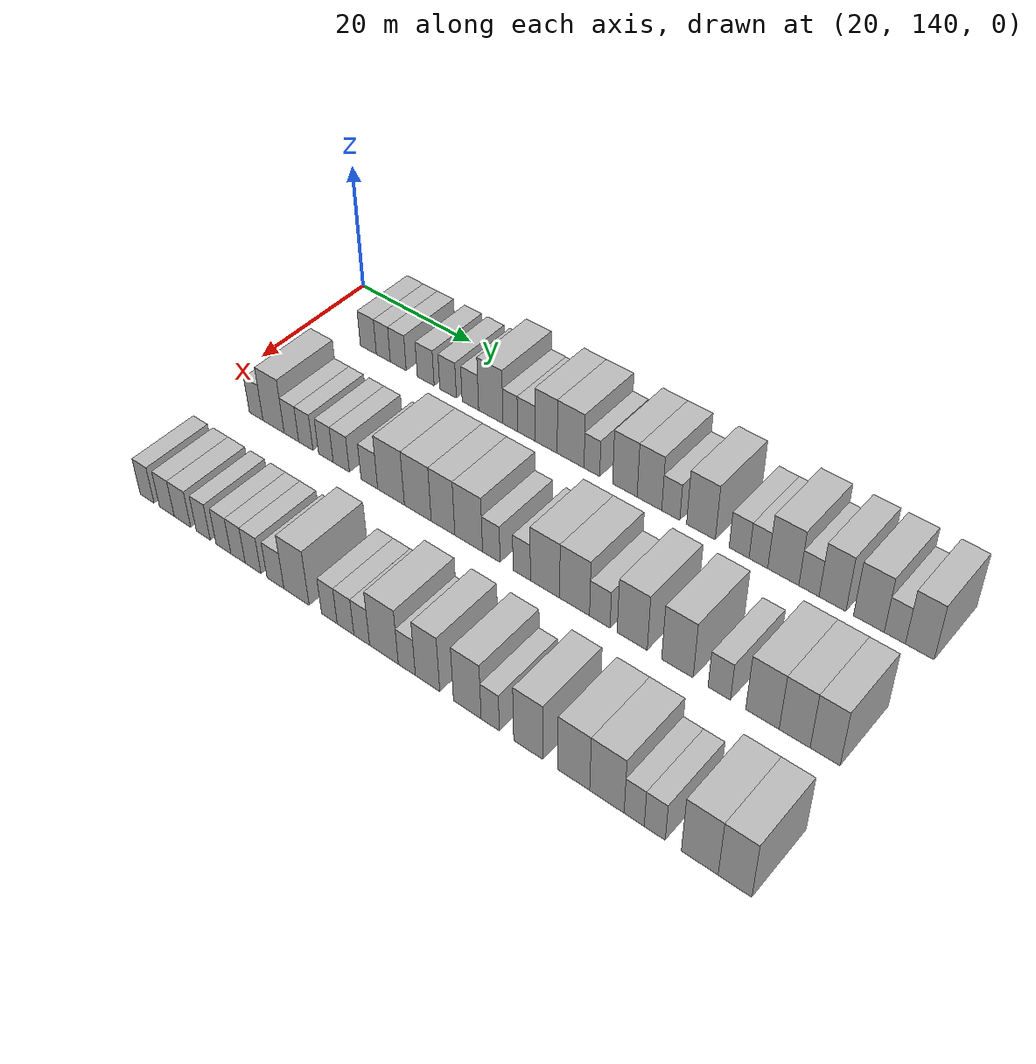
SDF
<sdf version="1.6">
 <world name="default">
  <model name="building_88">
   <static>1</static>
   <pose>25.0000 150.2598 0 0.000000 0.000000 0.000000</pose>
   <link name="link">
    <pose>0 0 3.00 0 0 0</pose>
    <collision name="collision"><geometry><box><size>10.0000 2.9567 6.0000</size></box></geometry></collision>
    <visual name="visual">
     <cast_shadows>0</cast_shadows>
     <geometry><box><size>10.0000 2.9567 6.0000</size></box></geometry>
     <material>
      <script>
       <uri>model://HANNAS_wall/materials/scripts</uri>
       <uri>model://HANNAS_wall/materials/textures</uri>
       <name>vrc/HANNAS_wall</name>
      </script>
     </material>
    </visual>
   </link>
  </model>
  <model name="building_89">
   <static>1</static>
   <pose>25.0000 153.0227 0 0.000000 0.000000 0.000000</pose>
   <link name="link">
    <pose>0 0 3.00 0 0 0</pose>
    <collision name="collision"><geometry><box><size>10.0000 2.5691 6.0000</size></box></geometry></collision>
    <visual name="visual">
     <cast_shadows>0</cast_shadows>
     <geometry><box><size>10.0000 2.5691 6.0000</size></box></geometry>
     <material>
      <script>
       <uri>model://HANNAS_wall/materials/scripts</uri>
       <uri>model://HANNAS_wall/materials/textures</uri>
       <name>vrc/HANNAS_wall</name>
      </script>
     </material>
    </visual>
   </link>
  </model>
  <model name="building_90">
   <static>1</static>
   <pose>25.0000 155.7502 0 0.000000 0.000000 0.000000</pose>
   <link name="link">
    <pose>0 0 3.00 0 0 0</pose>
    <collision name="collision"><geometry><box><size>10.0000 2.8860 6.0000</size></box></geometry></collision>
    <visual name="visual">
     <cast_shadows>0</cast_shadows>
     <geometry><box><size>10.0000 2.8860 6.0000</size></box></geometry>
     <material>
      <script>
       <uri>model://HANNAS_wall/materials/scripts</uri>
       <uri>model://HANNAS_wall/materials/textures</uri>
       <name>vrc/HANNAS_wall</name>
      </script>
     </material>
    </visual>
   </link>
  </model>
  <model name="building_91">
   <static>1</static>
   <pose>25.0000 160.6923 0 0.000000 0.000000 0.000000</pose>
   <link name="link">
    <pose>0 0 3.00 0 0 0</pose>
    <collision name="collision"><geometry><box><size>10.0000 2.9981 6.0000</size></box></geometry></collision>
    <visual name="visual">
     <cast_shadows>0</cast_shadows>
     <geometry><box><size>10.0000 2.9981 6.0000</size></box></geometry>
     <material>
      <script>
       <uri>model://HANNAS_wall/materials/scripts</uri>
       <uri>model://HANNAS_wall/materials/textures</uri>
       <name>vrc/HANNAS_wall</name>
      </script>
     </material>
    </visual>
   </link>
  </model>
  <model name="building_92">
   <static>1</static>
   <pose>25.0000 164.6418 0 0.000000 0.000000 0.000000</pose>
   <link name="link">
    <pose>0 0 3.00 0 0 0</pose>
    <collision name="collision"><geometry><box><size>10.0000 2.9009 6.0000</size></box></geometry></collision>
    <visual name="visual">
     <cast_shadows>0</cast_shadows>
     <geometry><box><size>10.0000 2.9009 6.0000</size></box></geometry>
     <material>
      <script>
       <uri>model://HANNAS_wall/materials/scripts</uri>
       <uri>model://HANNAS_wall/materials/textures</uri>
       <name>vrc/HANNAS_wall</name>
      </script>
     </material>
    </visual>
   </link>
  </model>
  <model name="building_93">
   <static>1</static>
   <pose>25.0000 168.5170 0 0.000000 0.000000 0.000000</pose>
   <link name="link">
    <pose>0 0 3.00 0 0 0</pose>
    <collision name="collision"><geometry><box><size>10.0000 2.8494 6.0000</size></box></geometry></collision>
    <visual name="visual">
     <cast_shadows>0</cast_shadows>
     <geometry><box><size>10.0000 2.8494 6.0000</size></box></geometry>
     <material>
      <script>
       <uri>model://HANNAS_wall/materials/scripts</uri>
       <uri>model://HANNAS_wall/materials/textures</uri>
       <name>vrc/HANNAS_wall</name>
      </script>
     </material>
    </visual>
   </link>
  </model>
  <model name="building_94">
   <static>1</static>
   <pose>25.0000 172.0092 0 0.000000 0.000000 0.000000</pose>
   <link name="link">
    <pose>0 0 4.50 0 0 0</pose>
    <collision name="collision"><geometry><box><size>10.0000 4.1350 9.0000</size></box></geometry></collision>
    <visual name="visual">
     <cast_shadows>0</cast_shadows>
     <geometry><box><size>10.0000 4.1350 9.0000</size></box></geometry>
     <material>
      <script>
       <uri>model://HANNAS_wall/materials/scripts</uri>
       <uri>model://HANNAS_wall/materials/textures</uri>
       <name>vrc/HANNAS_wall</name>
      </script>
     </material>
    </visual>
   </link>
  </model>
  <model name="building_95">
   <static>1</static>
   <pose>25.0000 175.2927 0 0.000000 0.000000 0.000000</pose>
   <link name="link">
    <pose>0 0 3.00 0 0 0</pose>
    <collision name="collision"><geometry><box><size>10.0000 2.4320 6.0000</size></box></geometry></collision>
    <visual name="visual">
     <cast_shadows>0</cast_shadows>
     <geometry><box><size>10.0000 2.4320 6.0000</size></box></geometry>
     <material>
      <script>
       <uri>model://HANNAS_wall/materials/scripts</uri>
       <uri>model://HANNAS_wall/materials/textures</uri>
       <name>vrc/HANNAS_wall</name>
      </script>
     </material>
    </visual>
   </link>
  </model>
  <model name="building_96">
   <static>1</static>
   <pose>25.0000 177.9557 0 0.000000 0.000000 0.000000</pose>
   <link name="link">
    <pose>0 0 3.00 0 0 0</pose>
    <collision name="collision"><geometry><box><size>10.0000 2.8940 6.0000</size></box></geometry></collision>
    <visual name="visual">
     <cast_shadows>0</cast_shadows>
     <geometry><box><size>10.0000 2.8940 6.0000</size></box></geometry>
     <material>
      <script>
       <uri>model://HANNAS_wall/materials/scripts</uri>
       <uri>model://HANNAS_wall/materials/textures</uri>
       <name>vrc/HANNAS_wall</name>
      </script>
     </material>
    </visual>
   </link>
  </model>
  <model name="building_97">
   <static>1</static>
   <pose>25.0000 181.2057 0 0.000000 0.000000 0.000000</pose>
   <link name="link">
    <pose>0 0 4.50 0 0 0</pose>
    <collision name="collision"><geometry><box><size>10.0000 3.6061 9.0000</size></box></geometry></collision>
    <visual name="visual">
     <cast_shadows>0</cast_shadows>
     <geometry><box><size>10.0000 3.6061 9.0000</size></box></geometry>
     <material>
      <script>
       <uri>model://HANNAS_wall/materials/scripts</uri>
       <uri>model://HANNAS_wall/materials/textures</uri>
       <name>vrc/HANNAS_wall</name>
      </script>
     </material>
    </visual>
   </link>
  </model>
  <model name="building_98">
   <static>1</static>
   <pose>25.0000 185.1647 0 0.000000 0.000000 0.000000</pose>
   <link name="link">
    <pose>0 0 4.50 0 0 0</pose>
    <collision name="collision"><geometry><box><size>10.0000 4.3118 9.0000</size></box></geometry></collision>
    <visual name="visual">
     <cast_shadows>0</cast_shadows>
     <geometry><box><size>10.0000 4.3118 9.0000</size></box></geometry>
     <material>
      <script>
       <uri>model://HANNAS_wall/materials/scripts</uri>
       <uri>model://HANNAS_wall/materials/textures</uri>
       <name>vrc/HANNAS_wall</name>
      </script>
     </material>
    </visual>
   </link>
  </model>
  <model name="building_99">
   <static>1</static>
   <pose>25.0000 188.5577 0 0.000000 0.000000 0.000000</pose>
   <link name="link">
    <pose>0 0 3.00 0 0 0</pose>
    <collision name="collision"><geometry><box><size>10.0000 2.4742 6.0000</size></box></geometry></collision>
    <visual name="visual">
     <cast_shadows>0</cast_shadows>
     <geometry><box><size>10.0000 2.4742 6.0000</size></box></geometry>
     <material>
      <script>
       <uri>model://HANNAS_wall/materials/scripts</uri>
       <uri>model://HANNAS_wall/materials/textures</uri>
       <name>vrc/HANNAS_wall</name>
      </script>
     </material>
    </visual>
   </link>
  </model>
  <model name="building_100">
   <static>1</static>
   <pose>25.0000 193.6884 0 0.000000 0.000000 0.000000</pose>
   <link name="link">
    <pose>0 0 4.50 0 0 0</pose>
    <collision name="collision"><geometry><box><size>10.0000 3.7870 9.0000</size></box></geometry></collision>
    <visual name="visual">
     <cast_shadows>0</cast_shadows>
     <geometry><box><size>10.0000 3.7870 9.0000</size></box></geometry>
     <material>
      <script>
       <uri>model://HANNAS_wall/materials/scripts</uri>
       <uri>model://HANNAS_wall/materials/textures</uri>
       <name>vrc/HANNAS_wall</name>
      </script>
     </material>
    </visual>
   </link>
  </model>
  <model name="building_101">
   <static>1</static>
   <pose>25.0000 197.4540 0 0.000000 0.000000 0.000000</pose>
   <link name="link">
    <pose>0 0 4.50 0 0 0</pose>
    <collision name="collision"><geometry><box><size>10.0000 3.7443 9.0000</size></box></geometry></collision>
    <visual name="visual">
     <cast_shadows>0</cast_shadows>
     <geometry><box><size>10.0000 3.7443 9.0000</size></box></geometry>
     <material>
      <script>
       <uri>model://HANNAS_wall/materials/scripts</uri>
       <uri>model://HANNAS_wall/materials/textures</uri>
       <name>vrc/HANNAS_wall</name>
      </script>
     </material>
    </visual>
   </link>
  </model>
  <model name="building_102">
   <static>1</static>
   <pose>25.0000 200.6809 0 0.000000 0.000000 0.000000</pose>
   <link name="link">
    <pose>0 0 3.00 0 0 0</pose>
    <collision name="collision"><geometry><box><size>10.0000 2.7096 6.0000</size></box></geometry></collision>
    <visual name="visual">
     <cast_shadows>0</cast_shadows>
     <geometry><box><size>10.0000 2.7096 6.0000</size></box></geometry>
     <material>
      <script>
       <uri>model://HANNAS_wall/materials/scripts</uri>
       <uri>model://HANNAS_wall/materials/textures</uri>
       <name>vrc/HANNAS_wall</name>
      </script>
     </material>
    </visual>
   </link>
  </model>
  <model name="building_103">
   <static>1</static>
   <pose>25.0000 205.1415 0 0.000000 0.000000 0.000000</pose>
   <link name="link">
    <pose>0 0 4.50 0 0 0</pose>
    <collision name="collision"><geometry><box><size>10.0000 4.2116 9.0000</size></box></geometry></collision>
    <visual name="visual">
     <cast_shadows>0</cast_shadows>
     <geometry><box><size>10.0000 4.2116 9.0000</size></box></geometry>
     <material>
      <script>
       <uri>model://HANNAS_wall/materials/scripts</uri>
       <uri>model://HANNAS_wall/materials/textures</uri>
       <name>vrc/HANNAS_wall</name>
      </script>
     </material>
    </visual>
   </link>
  </model>
  <model name="building_104">
   <static>1</static>
   <pose>25.0000 210.6692 0 0.000000 0.000000 0.000000</pose>
   <link name="link">
    <pose>0 0 3.00 0 0 0</pose>
    <collision name="collision"><geometry><box><size>10.0000 2.8437 6.0000</size></box></geometry></collision>
    <visual name="visual">
     <cast_shadows>0</cast_shadows>
     <geometry><box><size>10.0000 2.8437 6.0000</size></box></geometry>
     <material>
      <script>
       <uri>model://HANNAS_wall/materials/scripts</uri>
       <uri>model://HANNAS_wall/materials/textures</uri>
       <name>vrc/HANNAS_wall</name>
      </script>
     </material>
    </visual>
   </link>
  </model>
  <model name="building_105">
   <static>1</static>
   <pose>25.0000 213.4097 0 0.000000 0.000000 0.000000</pose>
   <link name="link">
    <pose>0 0 3.00 0 0 0</pose>
    <collision name="collision"><geometry><box><size>10.0000 2.6374 6.0000</size></box></geometry></collision>
    <visual name="visual">
     <cast_shadows>0</cast_shadows>
     <geometry><box><size>10.0000 2.6374 6.0000</size></box></geometry>
     <material>
      <script>
       <uri>model://HANNAS_wall/materials/scripts</uri>
       <uri>model://HANNAS_wall/materials/textures</uri>
       <name>vrc/HANNAS_wall</name>
      </script>
     </material>
    </visual>
   </link>
  </model>
  <model name="building_106">
   <static>1</static>
   <pose>25.0000 216.8878 0 0.000000 0.000000 0.000000</pose>
   <link name="link">
    <pose>0 0 4.50 0 0 0</pose>
    <collision name="collision"><geometry><box><size>10.0000 4.3187 9.0000</size></box></geometry></collision>
    <visual name="visual">
     <cast_shadows>0</cast_shadows>
     <geometry><box><size>10.0000 4.3187 9.0000</size></box></geometry>
     <material>
      <script>
       <uri>model://HANNAS_wall/materials/scripts</uri>
       <uri>model://HANNAS_wall/materials/textures</uri>
       <name>vrc/HANNAS_wall</name>
      </script>
     </material>
    </visual>
   </link>
  </model>
  <model name="building_107">
   <static>1</static>
   <pose>25.0000 220.4277 0 0.000000 0.000000 0.000000</pose>
   <link name="link">
    <pose>0 0 3.00 0 0 0</pose>
    <collision name="collision"><geometry><box><size>10.0000 2.7611 6.0000</size></box></geometry></collision>
    <visual name="visual">
     <cast_shadows>0</cast_shadows>
     <geometry><box><size>10.0000 2.7611 6.0000</size></box></geometry>
     <material>
      <script>
       <uri>model://HANNAS_wall/materials/scripts</uri>
       <uri>model://HANNAS_wall/materials/textures</uri>
       <name>vrc/HANNAS_wall</name>
      </script>
     </material>
    </visual>
   </link>
  </model>
  <model name="building_108">
   <static>1</static>
   <pose>25.0000 223.6137 0 0.000000 0.000000 0.000000</pose>
   <link name="link">
    <pose>0 0 4.50 0 0 0</pose>
    <collision name="collision"><geometry><box><size>10.0000 3.6108 9.0000</size></box></geometry></collision>
    <visual name="visual">
     <cast_shadows>0</cast_shadows>
     <geometry><box><size>10.0000 3.6108 9.0000</size></box></geometry>
     <material>
      <script>
       <uri>model://HANNAS_wall/materials/scripts</uri>
       <uri>model://HANNAS_wall/materials/textures</uri>
       <name>vrc/HANNAS_wall</name>
      </script>
     </material>
    </visual>
   </link>
  </model>
  <model name="building_109">
   <static>1</static>
   <pose>25.0000 228.4411 0 0.000000 0.000000 0.000000</pose>
   <link name="link">
    <pose>0 0 4.50 0 0 0</pose>
    <collision name="collision"><geometry><box><size>10.0000 4.0441 9.0000</size></box></geometry></collision>
    <visual name="visual">
     <cast_shadows>0</cast_shadows>
     <geometry><box><size>10.0000 4.0441 9.0000</size></box></geometry>
     <material>
      <script>
       <uri>model://HANNAS_wall/materials/scripts</uri>
       <uri>model://HANNAS_wall/materials/textures</uri>
       <name>vrc/HANNAS_wall</name>
      </script>
     </material>
    </visual>
   </link>
  </model>
  <model name="building_110">
   <static>1</static>
   <pose>25.0000 231.8289 0 0.000000 0.000000 0.000000</pose>
   <link name="link">
    <pose>0 0 3.00 0 0 0</pose>
    <collision name="collision"><geometry><box><size>10.0000 2.7315 6.0000</size></box></geometry></collision>
    <visual name="visual">
     <cast_shadows>0</cast_shadows>
     <geometry><box><size>10.0000 2.7315 6.0000</size></box></geometry>
     <material>
      <script>
       <uri>model://HANNAS_wall/materials/scripts</uri>
       <uri>model://HANNAS_wall/materials/textures</uri>
       <name>vrc/HANNAS_wall</name>
      </script>
     </material>
    </visual>
   </link>
  </model>
  <model name="building_111">
   <static>1</static>
   <pose>25.0000 235.0298 0 0.000000 0.000000 0.000000</pose>
   <link name="link">
    <pose>0 0 4.50 0 0 0</pose>
    <collision name="collision"><geometry><box><size>10.0000 3.6703 9.0000</size></box></geometry></collision>
    <visual name="visual">
     <cast_shadows>0</cast_shadows>
     <geometry><box><size>10.0000 3.6703 9.0000</size></box></geometry>
     <material>
      <script>
       <uri>model://HANNAS_wall/materials/scripts</uri>
       <uri>model://HANNAS_wall/materials/textures</uri>
       <name>vrc/HANNAS_wall</name>
      </script>
     </material>
    </visual>
   </link>
  </model>
  <model name="building_214">
   <static>1</static>
   <pose>44.0000 148.1251 0 0.000000 0.000000 0.000000</pose>
   <link name="link">
    <pose>0 0 3.00 0 0 0</pose>
    <collision name="collision"><geometry><box><size>10.0000 2.5204 6.0000</size></box></geometry></collision>
    <visual name="visual">
     <cast_shadows>0</cast_shadows>
     <geometry><box><size>10.0000 2.5204 6.0000</size></box></geometry>
     <material>
      <script>
       <uri>model://HANNAS_wall/materials/scripts</uri>
       <uri>model://HANNAS_wall/materials/textures</uri>
       <name>vrc/HANNAS_wall</name>
      </script>
     </material>
    </visual>
   </link>
  </model>
  <model name="building_215">
   <static>1</static>
   <pose>44.0000 151.3340 0 0.000000 0.000000 0.000000</pose>
   <link name="link">
    <pose>0 0 4.50 0 0 0</pose>
    <collision name="collision"><geometry><box><size>10.0000 3.8974 9.0000</size></box></geometry></collision>
    <visual name="visual">
     <cast_shadows>0</cast_shadows>
     <geometry><box><size>10.0000 3.8974 9.0000</size></box></geometry>
     <material>
      <script>
       <uri>model://HANNAS_wall/materials/scripts</uri>
       <uri>model://HANNAS_wall/materials/textures</uri>
       <name>vrc/HANNAS_wall</name>
      </script>
     </material>
    </visual>
   </link>
  </model>
  <model name="building_216">
   <static>1</static>
   <pose>44.0000 154.5901 0 0.000000 0.000000 0.000000</pose>
   <link name="link">
    <pose>0 0 3.00 0 0 0</pose>
    <collision name="collision"><geometry><box><size>10.0000 2.6148 6.0000</size></box></geometry></collision>
    <visual name="visual">
     <cast_shadows>0</cast_shadows>
     <geometry><box><size>10.0000 2.6148 6.0000</size></box></geometry>
     <material>
      <script>
       <uri>model://HANNAS_wall/materials/scripts</uri>
       <uri>model://HANNAS_wall/materials/textures</uri>
       <name>vrc/HANNAS_wall</name>
      </script>
     </material>
    </visual>
   </link>
  </model>
  <model name="building_217">
   <static>1</static>
   <pose>44.0000 157.1771 0 0.000000 0.000000 0.000000</pose>
   <link name="link">
    <pose>0 0 3.00 0 0 0</pose>
    <collision name="collision"><geometry><box><size>10.0000 2.5592 6.0000</size></box></geometry></collision>
    <visual name="visual">
     <cast_shadows>0</cast_shadows>
     <geometry><box><size>10.0000 2.5592 6.0000</size></box></geometry>
     <material>
      <script>
       <uri>model://HANNAS_wall/materials/scripts</uri>
       <uri>model://HANNAS_wall/materials/textures</uri>
       <name>vrc/HANNAS_wall</name>
      </script>
     </material>
    </visual>
   </link>
  </model>
  <model name="building_218">
   <static>1</static>
   <pose>44.0000 160.7422 0 0.000000 0.000000 0.000000</pose>
   <link name="link">
    <pose>0 0 3.00 0 0 0</pose>
    <collision name="collision"><geometry><box><size>10.0000 2.5712 6.0000</size></box></geometry></collision>
    <visual name="visual">
     <cast_shadows>0</cast_shadows>
     <geometry><box><size>10.0000 2.5712 6.0000</size></box></geometry>
     <material>
      <script>
       <uri>model://HANNAS_wall/materials/scripts</uri>
       <uri>model://HANNAS_wall/materials/textures</uri>
       <name>vrc/HANNAS_wall</name>
      </script>
     </material>
    </visual>
   </link>
  </model>
  <model name="building_219">
   <static>1</static>
   <pose>44.0000 163.4364 0 0.000000 0.000000 0.000000</pose>
   <link name="link">
    <pose>0 0 3.00 0 0 0</pose>
    <collision name="collision"><geometry><box><size>10.0000 2.8171 6.0000</size></box></geometry></collision>
    <visual name="visual">
     <cast_shadows>0</cast_shadows>
     <geometry><box><size>10.0000 2.8171 6.0000</size></box></geometry>
     <material>
      <script>
       <uri>model://HANNAS_wall/materials/scripts</uri>
       <uri>model://HANNAS_wall/materials/textures</uri>
       <name>vrc/HANNAS_wall</name>
      </script>
     </material>
    </visual>
   </link>
  </model>
  <model name="building_220">
   <static>1</static>
   <pose>44.0000 168.2582 0 0.000000 0.000000 0.000000</pose>
   <link name="link">
    <pose>0 0 3.00 0 0 0</pose>
    <collision name="collision"><geometry><box><size>10.0000 2.8265 6.0000</size></box></geometry></collision>
    <visual name="visual">
     <cast_shadows>0</cast_shadows>
     <geometry><box><size>10.0000 2.8265 6.0000</size></box></geometry>
     <material>
      <script>
       <uri>model://HANNAS_wall/materials/scripts</uri>
       <uri>model://HANNAS_wall/materials/textures</uri>
       <name>vrc/HANNAS_wall</name>
      </script>
     </material>
    </visual>
   </link>
  </model>
  <model name="building_221">
   <static>1</static>
   <pose>44.0000 171.9052 0 0.000000 0.000000 0.000000</pose>
   <link name="link">
    <pose>0 0 4.50 0 0 0</pose>
    <collision name="collision"><geometry><box><size>10.0000 4.4675 9.0000</size></box></geometry></collision>
    <visual name="visual">
     <cast_shadows>0</cast_shadows>
     <geometry><box><size>10.0000 4.4675 9.0000</size></box></geometry>
     <material>
      <script>
       <uri>model://HANNAS_wall/materials/scripts</uri>
       <uri>model://HANNAS_wall/materials/textures</uri>
       <name>vrc/HANNAS_wall</name>
      </script>
     </material>
    </visual>
   </link>
  </model>
  <model name="building_222">
   <static>1</static>
   <pose>44.0000 176.3423 0 0.000000 0.000000 0.000000</pose>
   <link name="link">
    <pose>0 0 4.50 0 0 0</pose>
    <collision name="collision"><geometry><box><size>10.0000 4.4068 9.0000</size></box></geometry></collision>
    <visual name="visual">
     <cast_shadows>0</cast_shadows>
     <geometry><box><size>10.0000 4.4068 9.0000</size></box></geometry>
     <material>
      <script>
       <uri>model://HANNAS_wall/materials/scripts</uri>
       <uri>model://HANNAS_wall/materials/textures</uri>
       <name>vrc/HANNAS_wall</name>
      </script>
     </material>
    </visual>
   </link>
  </model>
  <model name="building_223">
   <static>1</static>
   <pose>44.0000 180.4431 0 0.000000 0.000000 0.000000</pose>
   <link name="link">
    <pose>0 0 4.50 0 0 0</pose>
    <collision name="collision"><geometry><box><size>10.0000 3.7948 9.0000</size></box></geometry></collision>
    <visual name="visual">
     <cast_shadows>0</cast_shadows>
     <geometry><box><size>10.0000 3.7948 9.0000</size></box></geometry>
     <material>
      <script>
       <uri>model://HANNAS_wall/materials/scripts</uri>
       <uri>model://HANNAS_wall/materials/textures</uri>
       <name>vrc/HANNAS_wall</name>
      </script>
     </material>
    </visual>
   </link>
  </model>
  <model name="building_224">
   <static>1</static>
   <pose>44.0000 184.5296 0 0.000000 0.000000 0.000000</pose>
   <link name="link">
    <pose>0 0 4.50 0 0 0</pose>
    <collision name="collision"><geometry><box><size>10.0000 4.3781 9.0000</size></box></geometry></collision>
    <visual name="visual">
     <cast_shadows>0</cast_shadows>
     <geometry><box><size>10.0000 4.3781 9.0000</size></box></geometry>
     <material>
      <script>
       <uri>model://HANNAS_wall/materials/scripts</uri>
       <uri>model://HANNAS_wall/materials/textures</uri>
       <name>vrc/HANNAS_wall</name>
      </script>
     </material>
    </visual>
   </link>
  </model>
  <model name="building_225">
   <static>1</static>
   <pose>44.0000 188.0778 0 0.000000 0.000000 0.000000</pose>
   <link name="link">
    <pose>0 0 3.00 0 0 0</pose>
    <collision name="collision"><geometry><box><size>10.0000 2.7183 6.0000</size></box></geometry></collision>
    <visual name="visual">
     <cast_shadows>0</cast_shadows>
     <geometry><box><size>10.0000 2.7183 6.0000</size></box></geometry>
     <material>
      <script>
       <uri>model://HANNAS_wall/materials/scripts</uri>
       <uri>model://HANNAS_wall/materials/textures</uri>
       <name>vrc/HANNAS_wall</name>
      </script>
     </material>
    </visual>
   </link>
  </model>
  <model name="building_226">
   <static>1</static>
   <pose>44.0000 192.7489 0 0.000000 0.000000 0.000000</pose>
   <link name="link">
    <pose>0 0 3.00 0 0 0</pose>
    <collision name="collision"><geometry><box><size>10.0000 2.6240 6.0000</size></box></geometry></collision>
    <visual name="visual">
     <cast_shadows>0</cast_shadows>
     <geometry><box><size>10.0000 2.6240 6.0000</size></box></geometry>
     <material>
      <script>
       <uri>model://HANNAS_wall/materials/scripts</uri>
       <uri>model://HANNAS_wall/materials/textures</uri>
       <name>vrc/HANNAS_wall</name>
      </script>
     </material>
    </visual>
   </link>
  </model>
  <model name="building_227">
   <static>1</static>
   <pose>44.0000 196.2430 0 0.000000 0.000000 0.000000</pose>
   <link name="link">
    <pose>0 0 4.50 0 0 0</pose>
    <collision name="collision"><geometry><box><size>10.0000 4.3640 9.0000</size></box></geometry></collision>
    <visual name="visual">
     <cast_shadows>0</cast_shadows>
     <geometry><box><size>10.0000 4.3640 9.0000</size></box></geometry>
     <material>
      <script>
       <uri>model://HANNAS_wall/materials/scripts</uri>
       <uri>model://HANNAS_wall/materials/textures</uri>
       <name>vrc/HANNAS_wall</name>
      </script>
     </material>
    </visual>
   </link>
  </model>
  <model name="building_228">
   <static>1</static>
   <pose>44.0000 200.6126 0 0.000000 0.000000 0.000000</pose>
   <link name="link">
    <pose>0 0 4.50 0 0 0</pose>
    <collision name="collision"><geometry><box><size>10.0000 4.3752 9.0000</size></box></geometry></collision>
    <visual name="visual">
     <cast_shadows>0</cast_shadows>
     <geometry><box><size>10.0000 4.3752 9.0000</size></box></geometry>
     <material>
      <script>
       <uri>model://HANNAS_wall/materials/scripts</uri>
       <uri>model://HANNAS_wall/materials/textures</uri>
       <name>vrc/HANNAS_wall</name>
      </script>
     </material>
    </visual>
   </link>
  </model>
  <model name="building_229">
   <static>1</static>
   <pose>44.0000 204.2758 0 0.000000 0.000000 0.000000</pose>
   <link name="link">
    <pose>0 0 3.00 0 0 0</pose>
    <collision name="collision"><geometry><box><size>10.0000 2.9512 6.0000</size></box></geometry></collision>
    <visual name="visual">
     <cast_shadows>0</cast_shadows>
     <geometry><box><size>10.0000 2.9512 6.0000</size></box></geometry>
     <material>
      <script>
       <uri>model://HANNAS_wall/materials/scripts</uri>
       <uri>model://HANNAS_wall/materials/textures</uri>
       <name>vrc/HANNAS_wall</name>
      </script>
     </material>
    </visual>
   </link>
  </model>
  <model name="building_230">
   <static>1</static>
   <pose>44.0000 208.8715 0 0.000000 0.000000 0.000000</pose>
   <link name="link">
    <pose>0 0 4.50 0 0 0</pose>
    <collision name="collision"><geometry><box><size>10.0000 4.2401 9.0000</size></box></geometry></collision>
    <visual name="visual">
     <cast_shadows>0</cast_shadows>
     <geometry><box><size>10.0000 4.2401 9.0000</size></box></geometry>
     <material>
      <script>
       <uri>model://HANNAS_wall/materials/scripts</uri>
       <uri>model://HANNAS_wall/materials/textures</uri>
       <name>vrc/HANNAS_wall</name>
      </script>
     </material>
    </visual>
   </link>
  </model>
  <model name="building_231">
   <static>1</static>
   <pose>44.0000 215.1394 0 0.000000 0.000000 0.000000</pose>
   <link name="link">
    <pose>0 0 4.50 0 0 0</pose>
    <collision name="collision"><geometry><box><size>10.0000 4.2958 9.0000</size></box></geometry></collision>
    <visual name="visual">
     <cast_shadows>0</cast_shadows>
     <geometry><box><size>10.0000 4.2958 9.0000</size></box></geometry>
     <material>
      <script>
       <uri>model://HANNAS_wall/materials/scripts</uri>
       <uri>model://HANNAS_wall/materials/textures</uri>
       <name>vrc/HANNAS_wall</name>
      </script>
     </material>
    </visual>
   </link>
  </model>
  <model name="building_232">
   <static>1</static>
   <pose>44.0000 220.7684 0 0.000000 0.000000 0.000000</pose>
   <link name="link">
    <pose>0 0 3.00 0 0 0</pose>
    <collision name="collision"><geometry><box><size>10.0000 2.9624 6.0000</size></box></geometry></collision>
    <visual name="visual">
     <cast_shadows>0</cast_shadows>
     <geometry><box><size>10.0000 2.9624 6.0000</size></box></geometry>
     <material>
      <script>
       <uri>model://HANNAS_wall/materials/scripts</uri>
       <uri>model://HANNAS_wall/materials/textures</uri>
       <name>vrc/HANNAS_wall</name>
      </script>
     </material>
    </visual>
   </link>
  </model>
  <model name="building_233">
   <static>1</static>
   <pose>44.0000 226.4036 0 0.000000 0.000000 0.000000</pose>
   <link name="link">
    <pose>0 0 4.50 0 0 0</pose>
    <collision name="collision"><geometry><box><size>10.0000 4.3080 9.0000</size></box></geometry></collision>
    <visual name="visual">
     <cast_shadows>0</cast_shadows>
     <geometry><box><size>10.0000 4.3080 9.0000</size></box></geometry>
     <material>
      <script>
       <uri>model://HANNAS_wall/materials/scripts</uri>
       <uri>model://HANNAS_wall/materials/textures</uri>
       <name>vrc/HANNAS_wall</name>
      </script>
     </material>
    </visual>
   </link>
  </model>
  <model name="building_234">
   <static>1</static>
   <pose>44.0000 230.5121 0 0.000000 0.000000 0.000000</pose>
   <link name="link">
    <pose>0 0 4.50 0 0 0</pose>
    <collision name="collision"><geometry><box><size>10.0000 3.9090 9.0000</size></box></geometry></collision>
    <visual name="visual">
     <cast_shadows>0</cast_shadows>
     <geometry><box><size>10.0000 3.9090 9.0000</size></box></geometry>
     <material>
      <script>
       <uri>model://HANNAS_wall/materials/scripts</uri>
       <uri>model://HANNAS_wall/materials/textures</uri>
       <name>vrc/HANNAS_wall</name>
      </script>
     </material>
    </visual>
   </link>
  </model>
  <model name="building_235">
   <static>1</static>
   <pose>44.0000 234.3185 0 0.000000 0.000000 0.000000</pose>
   <link name="link">
    <pose>0 0 4.50 0 0 0</pose>
    <collision name="collision"><geometry><box><size>10.0000 3.7036 9.0000</size></box></geometry></collision>
    <visual name="visual">
     <cast_shadows>0</cast_shadows>
     <geometry><box><size>10.0000 3.7036 9.0000</size></box></geometry>
     <material>
      <script>
       <uri>model://HANNAS_wall/materials/scripts</uri>
       <uri>model://HANNAS_wall/materials/textures</uri>
       <name>vrc/HANNAS_wall</name>
      </script>
     </material>
    </visual>
   </link>
  </model>
  <model name="building_329">
   <static>1</static>
   <pose>63.0000 148.6169 0 0.000000 0.000000 0.000000</pose>
   <link name="link">
    <pose>0 0 3.00 0 0 0</pose>
    <collision name="collision"><geometry><box><size>10.0000 2.5457 6.0000</size></box></geometry></collision>
    <visual name="visual">
     <cast_shadows>0</cast_shadows>
     <geometry><box><size>10.0000 2.5457 6.0000</size></box></geometry>
     <material>
      <script>
       <uri>model://HANNAS_wall/materials/scripts</uri>
       <uri>model://HANNAS_wall/materials/textures</uri>
       <name>vrc/HANNAS_wall</name>
      </script>
     </material>
    </visual>
   </link>
  </model>
  <model name="building_330">
   <static>1</static>
   <pose>63.0000 152.2250 0 0.000000 0.000000 0.000000</pose>
   <link name="link">
    <pose>0 0 3.00 0 0 0</pose>
    <collision name="collision"><geometry><box><size>10.0000 2.6706 6.0000</size></box></geometry></collision>
    <visual name="visual">
     <cast_shadows>0</cast_shadows>
     <geometry><box><size>10.0000 2.6706 6.0000</size></box></geometry>
     <material>
      <script>
       <uri>model://HANNAS_wall/materials/scripts</uri>
       <uri>model://HANNAS_wall/materials/textures</uri>
       <name>vrc/HANNAS_wall</name>
      </script>
     </material>
    </visual>
   </link>
  </model>
  <model name="building_331">
   <static>1</static>
   <pose>63.0000 155.0332 0 0.000000 0.000000 0.000000</pose>
   <link name="link">
    <pose>0 0 3.00 0 0 0</pose>
    <collision name="collision"><geometry><box><size>10.0000 2.9457 6.0000</size></box></geometry></collision>
    <visual name="visual">
     <cast_shadows>0</cast_shadows>
     <geometry><box><size>10.0000 2.9457 6.0000</size></box></geometry>
     <material>
      <script>
       <uri>model://HANNAS_wall/materials/scripts</uri>
       <uri>model://HANNAS_wall/materials/textures</uri>
       <name>vrc/HANNAS_wall</name>
      </script>
     </material>
    </visual>
   </link>
  </model>
  <model name="building_332">
   <static>1</static>
   <pose>63.0000 158.7318 0 0.000000 0.000000 0.000000</pose>
   <link name="link">
    <pose>0 0 3.00 0 0 0</pose>
    <collision name="collision"><geometry><box><size>10.0000 2.4515 6.0000</size></box></geometry></collision>
    <visual name="visual">
     <cast_shadows>0</cast_shadows>
     <geometry><box><size>10.0000 2.4515 6.0000</size></box></geometry>
     <material>
      <script>
       <uri>model://HANNAS_wall/materials/scripts</uri>
       <uri>model://HANNAS_wall/materials/textures</uri>
       <name>vrc/HANNAS_wall</name>
      </script>
     </material>
    </visual>
   </link>
  </model>
  <model name="building_333">
   <static>1</static>
   <pose>63.0000 162.2367 0 0.000000 0.000000 0.000000</pose>
   <link name="link">
    <pose>0 0 3.00 0 0 0</pose>
    <collision name="collision"><geometry><box><size>10.0000 2.5583 6.0000</size></box></geometry></collision>
    <visual name="visual">
     <cast_shadows>0</cast_shadows>
     <geometry><box><size>10.0000 2.5583 6.0000</size></box></geometry>
     <material>
      <script>
       <uri>model://HANNAS_wall/materials/scripts</uri>
       <uri>model://HANNAS_wall/materials/textures</uri>
       <name>vrc/HANNAS_wall</name>
      </script>
     </material>
    </visual>
   </link>
  </model>
  <model name="building_334">
   <static>1</static>
   <pose>63.0000 164.7426 0 0.000000 0.000000 0.000000</pose>
   <link name="link">
    <pose>0 0 3.00 0 0 0</pose>
    <collision name="collision"><geometry><box><size>10.0000 2.4535 6.0000</size></box></geometry></collision>
    <visual name="visual">
     <cast_shadows>0</cast_shadows>
     <geometry><box><size>10.0000 2.4535 6.0000</size></box></geometry>
     <material>
      <script>
       <uri>model://HANNAS_wall/materials/scripts</uri>
       <uri>model://HANNAS_wall/materials/textures</uri>
       <name>vrc/HANNAS_wall</name>
      </script>
     </material>
    </visual>
   </link>
  </model>
  <model name="building_335">
   <static>1</static>
   <pose>63.0000 167.3052 0 0.000000 0.000000 0.000000</pose>
   <link name="link">
    <pose>0 0 3.00 0 0 0</pose>
    <collision name="collision"><geometry><box><size>10.0000 2.6716 6.0000</size></box></geometry></collision>
    <visual name="visual">
     <cast_shadows>0</cast_shadows>
     <geometry><box><size>10.0000 2.6716 6.0000</size></box></geometry>
     <material>
      <script>
       <uri>model://HANNAS_wall/materials/scripts</uri>
       <uri>model://HANNAS_wall/materials/textures</uri>
       <name>vrc/HANNAS_wall</name>
      </script>
     </material>
    </visual>
   </link>
  </model>
  <model name="building_336">
   <static>1</static>
   <pose>63.0000 171.0459 0 0.000000 0.000000 0.000000</pose>
   <link name="link">
    <pose>0 0 3.00 0 0 0</pose>
    <collision name="collision"><geometry><box><size>10.0000 2.8098 6.0000</size></box></geometry></collision>
    <visual name="visual">
     <cast_shadows>0</cast_shadows>
     <geometry><box><size>10.0000 2.8098 6.0000</size></box></geometry>
     <material>
      <script>
       <uri>model://HANNAS_wall/materials/scripts</uri>
       <uri>model://HANNAS_wall/materials/textures</uri>
       <name>vrc/HANNAS_wall</name>
      </script>
     </material>
    </visual>
   </link>
  </model>
  <model name="building_337">
   <static>1</static>
   <pose>63.0000 174.5090 0 0.000000 0.000000 0.000000</pose>
   <link name="link">
    <pose>0 0 4.50 0 0 0</pose>
    <collision name="collision"><geometry><box><size>10.0000 4.1163 9.0000</size></box></geometry></collision>
    <visual name="visual">
     <cast_shadows>0</cast_shadows>
     <geometry><box><size>10.0000 4.1163 9.0000</size></box></geometry>
     <material>
      <script>
       <uri>model://HANNAS_wall/materials/scripts</uri>
       <uri>model://HANNAS_wall/materials/textures</uri>
       <name>vrc/HANNAS_wall</name>
      </script>
     </material>
    </visual>
   </link>
  </model>
  <model name="building_338">
   <static>1</static>
   <pose>63.0000 179.8109 0 0.000000 0.000000 0.000000</pose>
   <link name="link">
    <pose>0 0 3.00 0 0 0</pose>
    <collision name="collision"><geometry><box><size>10.0000 2.4875 6.0000</size></box></geometry></collision>
    <visual name="visual">
     <cast_shadows>0</cast_shadows>
     <geometry><box><size>10.0000 2.4875 6.0000</size></box></geometry>
     <material>
      <script>
       <uri>model://HANNAS_wall/materials/scripts</uri>
       <uri>model://HANNAS_wall/materials/textures</uri>
       <name>vrc/HANNAS_wall</name>
      </script>
     </material>
    </visual>
   </link>
  </model>
  <model name="building_339">
   <static>1</static>
   <pose>63.0000 182.3698 0 0.000000 0.000000 0.000000</pose>
   <link name="link">
    <pose>0 0 3.00 0 0 0</pose>
    <collision name="collision"><geometry><box><size>10.0000 2.6303 6.0000</size></box></geometry></collision>
    <visual name="visual">
     <cast_shadows>0</cast_shadows>
     <geometry><box><size>10.0000 2.6303 6.0000</size></box></geometry>
     <material>
      <script>
       <uri>model://HANNAS_wall/materials/scripts</uri>
       <uri>model://HANNAS_wall/materials/textures</uri>
       <name>vrc/HANNAS_wall</name>
      </script>
     </material>
    </visual>
   </link>
  </model>
  <model name="building_340">
   <static>1</static>
   <pose>63.0000 184.9030 0 0.000000 0.000000 0.000000</pose>
   <link name="link">
    <pose>0 0 3.00 0 0 0</pose>
    <collision name="collision"><geometry><box><size>10.0000 2.4360 6.0000</size></box></geometry></collision>
    <visual name="visual">
     <cast_shadows>0</cast_shadows>
     <geometry><box><size>10.0000 2.4360 6.0000</size></box></geometry>
     <material>
      <script>
       <uri>model://HANNAS_wall/materials/scripts</uri>
       <uri>model://HANNAS_wall/materials/textures</uri>
       <name>vrc/HANNAS_wall</name>
      </script>
     </material>
    </visual>
   </link>
  </model>
  <model name="building_341">
   <static>1</static>
   <pose>63.0000 188.3095 0 0.000000 0.000000 0.000000</pose>
   <link name="link">
    <pose>0 0 4.50 0 0 0</pose>
    <collision name="collision"><geometry><box><size>10.0000 4.3771 9.0000</size></box></geometry></collision>
    <visual name="visual">
     <cast_shadows>0</cast_shadows>
     <geometry><box><size>10.0000 4.3771 9.0000</size></box></geometry>
     <material>
      <script>
       <uri>model://HANNAS_wall/materials/scripts</uri>
       <uri>model://HANNAS_wall/materials/textures</uri>
       <name>vrc/HANNAS_wall</name>
      </script>
     </material>
    </visual>
   </link>
  </model>
  <model name="building_342">
   <static>1</static>
   <pose>63.0000 191.7726 0 0.000000 0.000000 0.000000</pose>
   <link name="link">
    <pose>0 0 3.00 0 0 0</pose>
    <collision name="collision"><geometry><box><size>10.0000 2.5491 6.0000</size></box></geometry></collision>
    <visual name="visual">
     <cast_shadows>0</cast_shadows>
     <geometry><box><size>10.0000 2.5491 6.0000</size></box></geometry>
     <material>
      <script>
       <uri>model://HANNAS_wall/materials/scripts</uri>
       <uri>model://HANNAS_wall/materials/textures</uri>
       <name>vrc/HANNAS_wall</name>
      </script>
     </material>
    </visual>
   </link>
  </model>
  <model name="building_343">
   <static>1</static>
   <pose>63.0000 194.8515 0 0.000000 0.000000 0.000000</pose>
   <link name="link">
    <pose>0 0 4.50 0 0 0</pose>
    <collision name="collision"><geometry><box><size>10.0000 3.6087 9.0000</size></box></geometry></collision>
    <visual name="visual">
     <cast_shadows>0</cast_shadows>
     <geometry><box><size>10.0000 3.6087 9.0000</size></box></geometry>
     <material>
      <script>
       <uri>model://HANNAS_wall/materials/scripts</uri>
       <uri>model://HANNAS_wall/materials/textures</uri>
       <name>vrc/HANNAS_wall</name>
      </script>
     </material>
    </visual>
   </link>
  </model>
  <model name="building_344">
   <static>1</static>
   <pose>63.0000 200.6395 0 0.000000 0.000000 0.000000</pose>
   <link name="link">
    <pose>0 0 4.50 0 0 0</pose>
    <collision name="collision"><geometry><box><size>10.0000 3.9674 9.0000</size></box></geometry></collision>
    <visual name="visual">
     <cast_shadows>0</cast_shadows>
     <geometry><box><size>10.0000 3.9674 9.0000</size></box></geometry>
     <material>
      <script>
       <uri>model://HANNAS_wall/materials/scripts</uri>
       <uri>model://HANNAS_wall/materials/textures</uri>
       <name>vrc/HANNAS_wall</name>
      </script>
     </material>
    </visual>
   </link>
  </model>
  <model name="building_345">
   <static>1</static>
   <pose>63.0000 203.9032 0 0.000000 0.000000 0.000000</pose>
   <link name="link">
    <pose>0 0 3.00 0 0 0</pose>
    <collision name="collision"><geometry><box><size>10.0000 2.5599 6.0000</size></box></geometry></collision>
    <visual name="visual">
     <cast_shadows>0</cast_shadows>
     <geometry><box><size>10.0000 2.5599 6.0000</size></box></geometry>
     <material>
      <script>
       <uri>model://HANNAS_wall/materials/scripts</uri>
       <uri>model://HANNAS_wall/materials/textures</uri>
       <name>vrc/HANNAS_wall</name>
      </script>
     </material>
    </visual>
   </link>
  </model>
  <model name="building_346">
   <static>1</static>
   <pose>63.0000 209.1851 0 0.000000 0.000000 0.000000</pose>
   <link name="link">
    <pose>0 0 4.50 0 0 0</pose>
    <collision name="collision"><geometry><box><size>10.0000 4.0040 9.0000</size></box></geometry></collision>
    <visual name="visual">
     <cast_shadows>0</cast_shadows>
     <geometry><box><size>10.0000 4.0040 9.0000</size></box></geometry>
     <material>
      <script>
       <uri>model://HANNAS_wall/materials/scripts</uri>
       <uri>model://HANNAS_wall/materials/textures</uri>
       <name>vrc/HANNAS_wall</name>
      </script>
     </material>
    </visual>
   </link>
  </model>
  <model name="building_347">
   <static>1</static>
   <pose>63.0000 215.3109 0 0.000000 0.000000 0.000000</pose>
   <link name="link">
    <pose>0 0 4.50 0 0 0</pose>
    <collision name="collision"><geometry><box><size>10.0000 4.2474 9.0000</size></box></geometry></collision>
    <visual name="visual">
     <cast_shadows>0</cast_shadows>
     <geometry><box><size>10.0000 4.2474 9.0000</size></box></geometry>
     <material>
      <script>
       <uri>model://HANNAS_wall/materials/scripts</uri>
       <uri>model://HANNAS_wall/materials/textures</uri>
       <name>vrc/HANNAS_wall</name>
      </script>
     </material>
    </visual>
   </link>
  </model>
  <model name="building_348">
   <static>1</static>
   <pose>63.0000 219.6689 0 0.000000 0.000000 0.000000</pose>
   <link name="link">
    <pose>0 0 4.50 0 0 0</pose>
    <collision name="collision"><geometry><box><size>10.0000 4.4686 9.0000</size></box></geometry></collision>
    <visual name="visual">
     <cast_shadows>0</cast_shadows>
     <geometry><box><size>10.0000 4.4686 9.0000</size></box></geometry>
     <material>
      <script>
       <uri>model://HANNAS_wall/materials/scripts</uri>
       <uri>model://HANNAS_wall/materials/textures</uri>
       <name>vrc/HANNAS_wall</name>
      </script>
     </material>
    </visual>
   </link>
  </model>
  <model name="building_349">
   <static>1</static>
   <pose>63.0000 223.1843 0 0.000000 0.000000 0.000000</pose>
   <link name="link">
    <pose>0 0 3.00 0 0 0</pose>
    <collision name="collision"><geometry><box><size>10.0000 2.5623 6.0000</size></box></geometry></collision>
    <visual name="visual">
     <cast_shadows>0</cast_shadows>
     <geometry><box><size>10.0000 2.5623 6.0000</size></box></geometry>
     <material>
      <script>
       <uri>model://HANNAS_wall/materials/scripts</uri>
       <uri>model://HANNAS_wall/materials/textures</uri>
       <name>vrc/HANNAS_wall</name>
      </script>
     </material>
    </visual>
   </link>
  </model>
  <model name="building_350">
   <static>1</static>
   <pose>63.0000 225.7869 0 0.000000 0.000000 0.000000</pose>
   <link name="link">
    <pose>0 0 3.00 0 0 0</pose>
    <collision name="collision"><geometry><box><size>10.0000 2.6428 6.0000</size></box></geometry></collision>
    <visual name="visual">
     <cast_shadows>0</cast_shadows>
     <geometry><box><size>10.0000 2.6428 6.0000</size></box></geometry>
     <material>
      <script>
       <uri>model://HANNAS_wall/materials/scripts</uri>
       <uri>model://HANNAS_wall/materials/textures</uri>
       <name>vrc/HANNAS_wall</name>
      </script>
     </material>
    </visual>
   </link>
  </model>
  <model name="building_351">
   <static>1</static>
   <pose>63.0000 231.3473 0 0.000000 0.000000 0.000000</pose>
   <link name="link">
    <pose>0 0 4.50 0 0 0</pose>
    <collision name="collision"><geometry><box><size>10.0000 4.4779 9.0000</size></box></geometry></collision>
    <visual name="visual">
     <cast_shadows>0</cast_shadows>
     <geometry><box><size>10.0000 4.4779 9.0000</size></box></geometry>
     <material>
      <script>
       <uri>model://HANNAS_wall/materials/scripts</uri>
       <uri>model://HANNAS_wall/materials/textures</uri>
       <name>vrc/HANNAS_wall</name>
      </script>
     </material>
    </visual>
   </link>
  </model>
  <model name="building_352">
   <static>1</static>
   <pose>63.0000 235.5955 0 0.000000 0.000000 0.000000</pose>
   <link name="link">
    <pose>0 0 4.50 0 0 0</pose>
    <collision name="collision"><geometry><box><size>10.0000 4.0185 9.0000</size></box></geometry></collision>
    <visual name="visual">
     <cast_shadows>0</cast_shadows>
     <geometry><box><size>10.0000 4.0185 9.0000</size></box></geometry>
     <material>
      <script>
       <uri>model://HANNAS_wall/materials/scripts</uri>
       <uri>model://HANNAS_wall/materials/textures</uri>
       <name>vrc/HANNAS_wall</name>
      </script>
     </material>
    </visual>
   </link>
  </model>
 </world>
</sdf>
